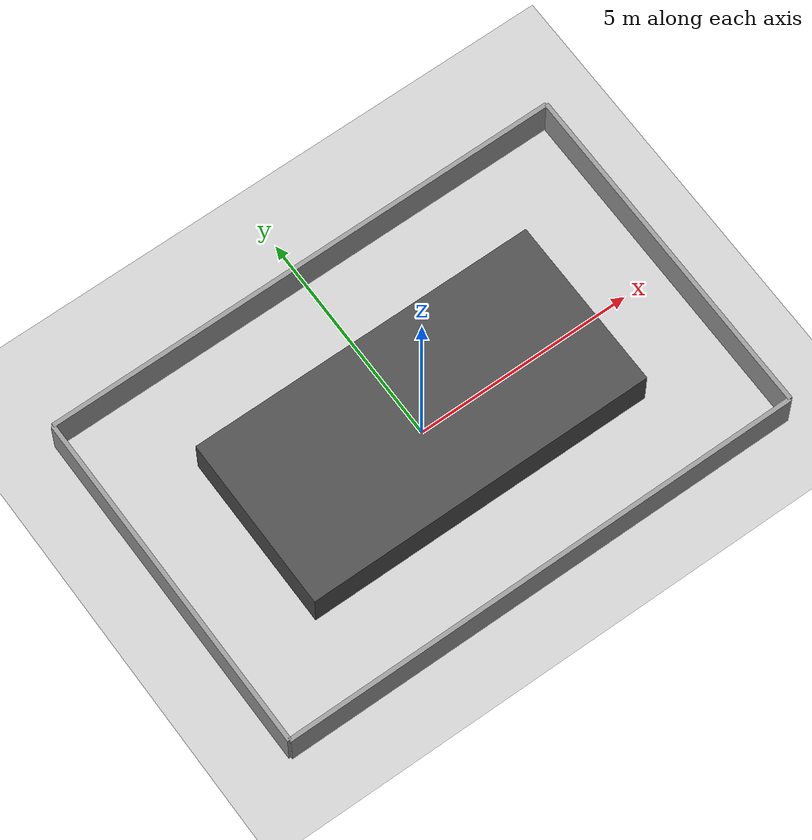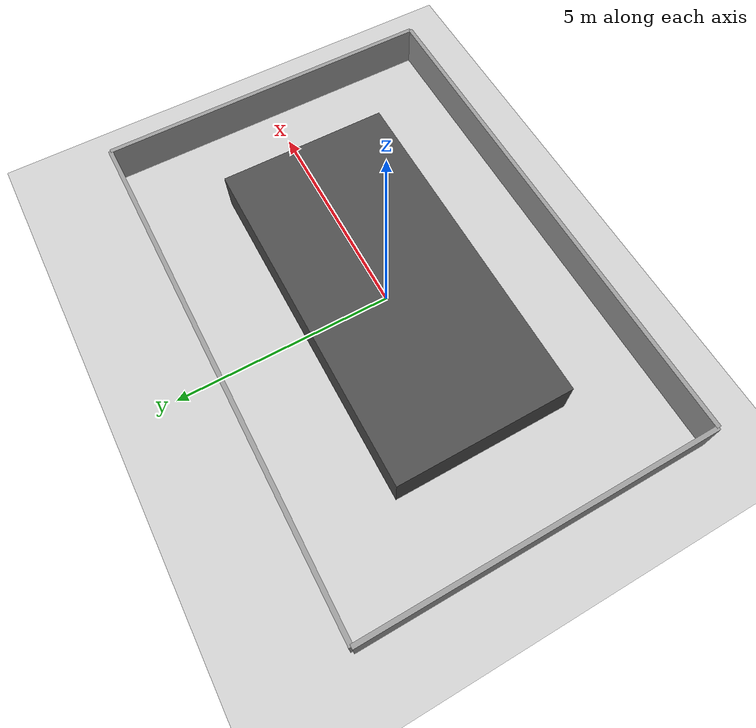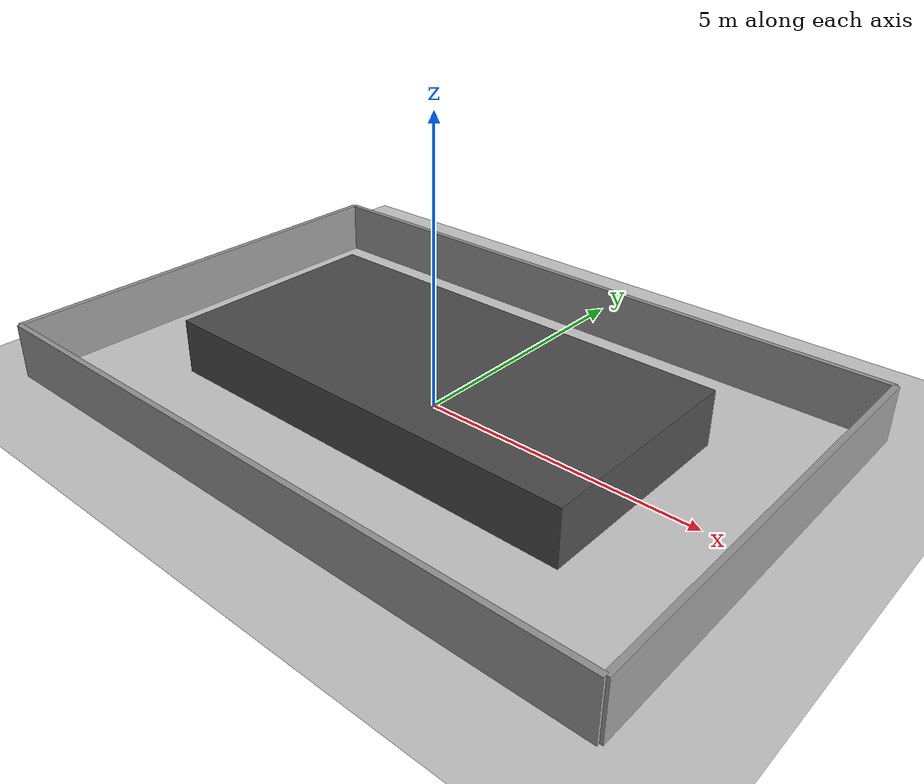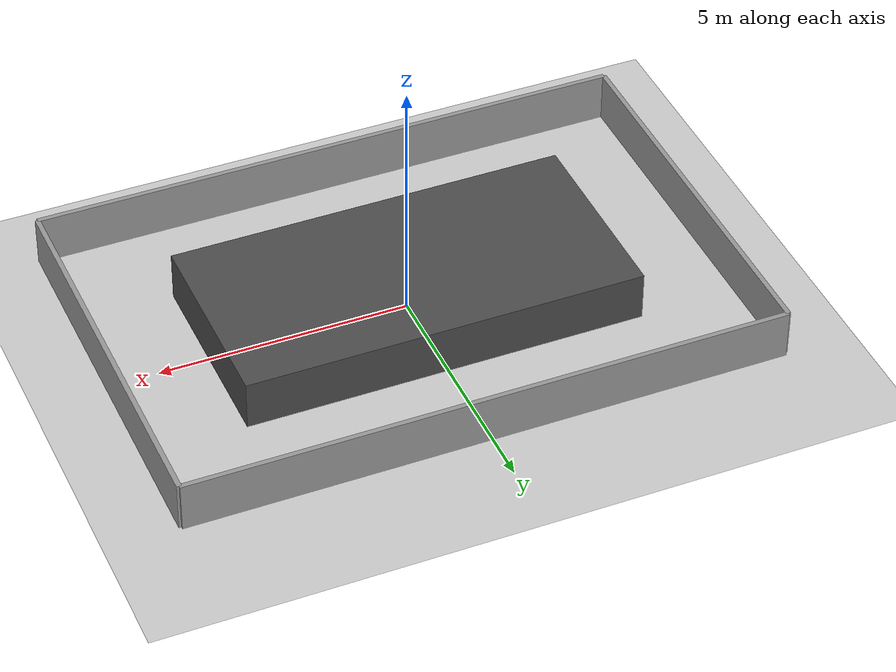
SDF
<?xml version="1.0" ?>
<sdf version="1.6">
  <world name="rect_track">
    <include><uri>model://sun</uri></include>
    <include><uri>model://ground_plane</uri></include>

    <model name='out_top'>
      <static>1</static>
      <pose>0 4.0 0.5 0 0 0</pose>
      <link name='link'>
        <collision name='collision'>
          <geometry><box><size>12.0 0.1 1.0</size></box></geometry>
        </collision>
        <visual name='visual'>
          <geometry><box><size>12.0 0.1 1.0</size></box></geometry>
          <material><script><name>Gazebo/Grey</name></script></material>
        </visual>
      </link>
    </model>
    <model name='out_bot'>
      <static>1</static>
      <pose>0 -4.0 0.5 0 0 0</pose>
      <link name='link'>
        <collision name='collision'>
          <geometry><box><size>12.0 0.1 1.0</size></box></geometry>
        </collision>
        <visual name='visual'>
          <geometry><box><size>12.0 0.1 1.0</size></box></geometry>
          <material><script><name>Gazebo/Grey</name></script></material>
        </visual>
      </link>
    </model>
    <model name='out_left'>
      <static>1</static>
      <pose>-6.0 0 0.5 0 0 0</pose>
      <link name='link'>
        <collision name='collision'>
          <geometry><box><size>0.1 8.0 1.0</size></box></geometry>
        </collision>
        <visual name='visual'>
          <geometry><box><size>0.1 8.0 1.0</size></box></geometry>
          <material><script><name>Gazebo/Grey</name></script></material>
        </visual>
      </link>
    </model>
    <model name='out_right'>
      <static>1</static>
      <pose>6.0 0 0.5 0 0 0</pose>
      <link name='link'>
        <collision name='collision'>
          <geometry><box><size>0.1 8.0 1.0</size></box></geometry>
        </collision>
        <visual name='visual'>
          <geometry><box><size>0.1 8.0 1.0</size></box></geometry>
          <material><script><name>Gazebo/Grey</name></script></material>
        </visual>
      </link>
    </model>
    <model name='infield_block'>
      <static>1</static>
      <pose>0 0 0.5 0 0 0</pose>
      <link name='link'>
        <collision name='collision'>
          <geometry><box><size>8.0 4.0 1.0</size></box></geometry>
        </collision>
        <visual name='visual'>
          <geometry><box><size>8.0 4.0 1.0</size></box></geometry>
          <material><script><name>Gazebo/DarkGrey</name></script></material>
        </visual>
      </link>
    </model>
  </world>
</sdf>
